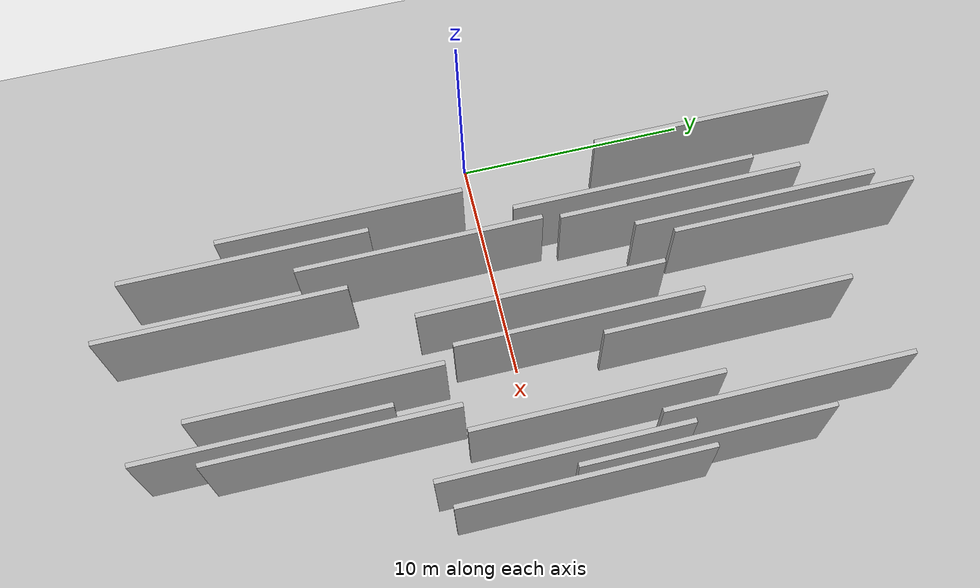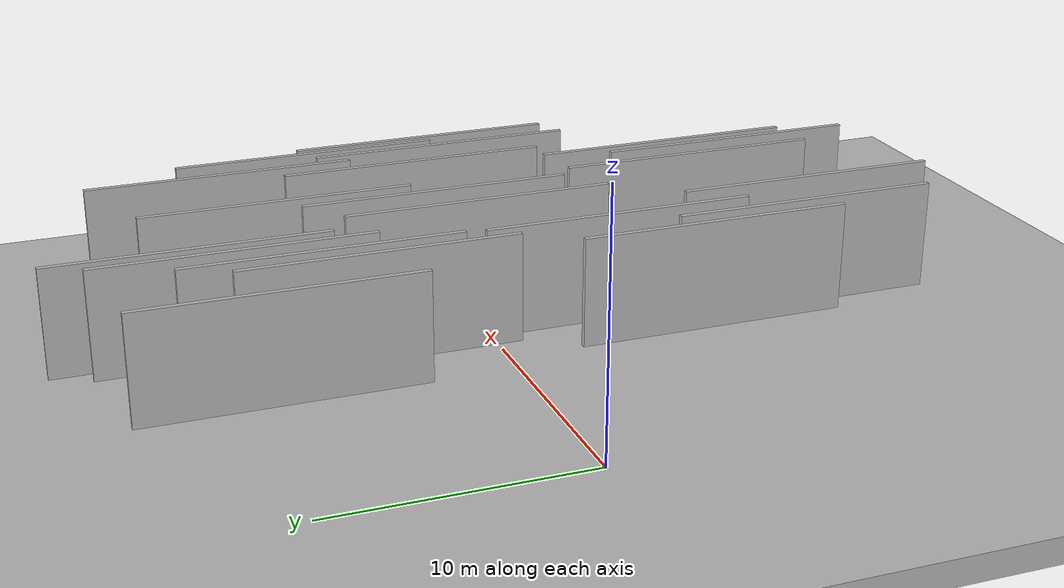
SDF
<?xml version="1.0" encoding="utf-8"?>

<sdf version="1.6">

   <world name="default">

      <gui fullscreen="0">

         <camera name="user_camera">

            <pose>-15 0 4.57585 0 0 0</pose>

            <view_controller>orbit</view_controller>

         </camera>

      </gui>

      <scene>

         <sky>

           <clouds>

             <speed>12</speed>

           </clouds>

         </sky>

         <ambient>0.4 0.4 0.4 1</ambient>

         <background>0.7 0.7 0.7 1</background>

         <shadows>1</shadows>

      </scene>

      <gravity>0 0 -9.8066</gravity>

      <magnetic_field>6e-06 2.3e-05 -4.2e-05</magnetic_field>

      <physics default="0" name="default_physics" type="ode">

         <ode>

            <solver>

               <type>quick</type>

               <iters>10</iters>

               <sor>1.0</sor>

               <use_dynamic_moi_rescaling>0</use_dynamic_moi_rescaling>

            </solver>

            <constraints>

               <cfm>0</cfm>

               <erp>0.2</erp>

               <contact_max_correcting_vel>100</contact_max_correcting_vel>

               <contact_surface_layer>0.001</contact_surface_layer>

            </constraints>

         </ode>

         <max_step_size>0.004</max_step_size>

         <real_time_factor>1</real_time_factor>

         <real_time_update_rate>250</real_time_update_rate>

      </physics>

      <light name="sun" type="directional">

         <cast_shadows>1</cast_shadows>

         <pose>0 0 10 0 0 0</pose>

         <diffuse>0.8 0.8 0.8 1</diffuse>

         <specular>0.2 0.2 0.2 1</specular>

         <attenuation>

            <range>1000</range>

            <constant>0.9</constant>

            <linear>0.01</linear>

            <quadratic>0.001</quadratic>

         </attenuation>

         <direction>-0.5 0.1 -0.9</direction>

      </light>

      <include>

         <name>ground_plane_1</name>

         <uri>model://HANNAS_ground_plane</uri>

         <pose>0 0 0  0 0 0</pose>

      </include>

      <include>

         <name>ground_plane_2</name>

         <uri>model://HANNAS_ground_plane</uri>

         <pose>100 0 0  0 0 0</pose>

      </include>

      <model name="HANNAS_wall_1">

         <static>1</static>

         <pose frame="">3.3472 9.8703 2.5 0.000000 0.000000 1.570796</pose>

         <link name="link">

            <pose frame="">0 0 2.00 0 0 0</pose>

            <collision name="collision">

               <geometry>

                  <box>

                     <size>10.00 0.2 4.00</size>

                  </box>

               </geometry>

               <max_contacts>10</max_contacts>

               <surface>

                  <contact>

                     <ode/>

                  </contact>

                  <bounce/>

                  <friction>

                     <torsional>

                        <ode/>

                     </torsional>

                     <ode/>

                  </friction>

               </surface>

            </collision>

            <visual name="visual">

               <cast_shadows>0</cast_shadows>

               <geometry>

                  <box>

                     <size>10.00 0.2 4.00</size>

                  </box>

               </geometry>

               <material>

                  <script>

                     <uri>model://HANNAS_wall/materials/scripts</uri>

                     <uri>model://HANNAS_wall/materials/textures</uri>

                     <name>vrc/HANNAS_wall</name>

                  </script>

               </material>

            </visual>

            <self_collide>0</self_collide>

            <enable_wind>0</enable_wind>

            <kinematic>0</kinematic>

         </link>

      </model>

      <model name="HANNAS_wall_2">

         <static>1</static>

         <pose frame="">5.0720 -9.8414 2.5 0.000000 0.000000 1.570796</pose>

         <link name="link">

            <pose frame="">0 0 2.00 0 0 0</pose>

            <collision name="collision">

               <geometry>

                  <box>

                     <size>10.00 0.2 4.00</size>

                  </box>

               </geometry>

               <max_contacts>10</max_contacts>

               <surface>

                  <contact>

                     <ode/>

                  </contact>

                  <bounce/>

                  <friction>

                     <torsional>

                        <ode/>

                     </torsional>

                     <ode/>

                  </friction>

               </surface>

            </collision>

            <visual name="visual">

               <cast_shadows>0</cast_shadows>

               <geometry>

                  <box>

                     <size>10.00 0.2 4.00</size>

                  </box>

               </geometry>

               <material>

                  <script>

                     <uri>model://HANNAS_wall/materials/scripts</uri>

                     <uri>model://HANNAS_wall/materials/textures</uri>

                     <name>vrc/HANNAS_wall</name>

                  </script>

               </material>

            </visual>

            <self_collide>0</self_collide>

            <enable_wind>0</enable_wind>

            <kinematic>0</kinematic>

         </link>

      </model>

      <model name="HANNAS_wall_3">

         <static>1</static>

         <pose frame="">13.0197 -7.7997 2.5 0.000000 0.000000 1.570796</pose>

         <link name="link">

            <pose frame="">0 0 2.00 0 0 0</pose>

            <collision name="collision">

               <geometry>

                  <box>

                     <size>10.00 0.2 4.00</size>

                  </box>

               </geometry>

               <max_contacts>10</max_contacts>

               <surface>

                  <contact>

                     <ode/>

                  </contact>

                  <bounce/>

                  <friction>

                     <torsional>

                        <ode/>

                     </torsional>

                     <ode/>

                  </friction>

               </surface>

            </collision>

            <visual name="visual">

               <cast_shadows>0</cast_shadows>

               <geometry>

                  <box>

                     <size>10.00 0.2 4.00</size>

                  </box>

               </geometry>

               <material>

                  <script>

                     <uri>model://HANNAS_wall/materials/scripts</uri>

                     <uri>model://HANNAS_wall/materials/textures</uri>

                     <name>vrc/HANNAS_wall</name>

                  </script>

               </material>

            </visual>

            <self_collide>0</self_collide>

            <enable_wind>0</enable_wind>

            <kinematic>0</kinematic>

         </link>

      </model>

      <model name="HANNAS_wall_4">

         <static>1</static>

         <pose frame="">16.2822 5.7857 2.5 0.000000 0.000000 1.570796</pose>

         <link name="link">

            <pose frame="">0 0 2.00 0 0 0</pose>

            <collision name="collision">

               <geometry>

                  <box>

                     <size>10.00 0.2 4.00</size>

                  </box>

               </geometry>

               <max_contacts>10</max_contacts>

               <surface>

                  <contact>

                     <ode/>

                  </contact>

                  <bounce/>

                  <friction>

                     <torsional>

                        <ode/>

                     </torsional>

                     <ode/>

                  </friction>

               </surface>

            </collision>

            <visual name="visual">

               <cast_shadows>0</cast_shadows>

               <geometry>

                  <box>

                     <size>10.00 0.2 4.00</size>

                  </box>

               </geometry>

               <material>

                  <script>

                     <uri>model://HANNAS_wall/materials/scripts</uri>

                     <uri>model://HANNAS_wall/materials/textures</uri>

                     <name>vrc/HANNAS_wall</name>

                  </script>

               </material>

            </visual>

            <self_collide>0</self_collide>

            <enable_wind>0</enable_wind>

            <kinematic>0</kinematic>

         </link>

      </model>

      <model name="HANNAS_wall_5">

         <static>1</static>

         <pose frame="">12.4127 -10.3117 2.5 0.000000 0.000000 1.570796</pose>

         <link name="link">

            <pose frame="">0 0 2.00 0 0 0</pose>

            <collision name="collision">

               <geometry>

                  <box>

                     <size>10.00 0.2 4.00</size>

                  </box>

               </geometry>

               <max_contacts>10</max_contacts>

               <surface>

                  <contact>

                     <ode/>

                  </contact>

                  <bounce/>

                  <friction>

                     <torsional>

                        <ode/>

                     </torsional>

                     <ode/>

                  </friction>

               </surface>

            </collision>

            <visual name="visual">

               <cast_shadows>0</cast_shadows>

               <geometry>

                  <box>

                     <size>10.00 0.2 4.00</size>

                  </box>

               </geometry>

               <material>

                  <script>

                     <uri>model://HANNAS_wall/materials/scripts</uri>

                     <uri>model://HANNAS_wall/materials/textures</uri>

                     <name>vrc/HANNAS_wall</name>

                  </script>

               </material>

            </visual>

            <self_collide>0</self_collide>

            <enable_wind>0</enable_wind>

            <kinematic>0</kinematic>

         </link>

      </model>

      <model name="HANNAS_wall_6">

         <static>1</static>

         <pose frame="">7.2855 10.4840 2.5 0.000000 0.000000 1.570796</pose>

         <link name="link">

            <pose frame="">0 0 2.00 0 0 0</pose>

            <collision name="collision">

               <geometry>

                  <box>

                     <size>10.00 0.2 4.00</size>

                  </box>

               </geometry>

               <max_contacts>10</max_contacts>

               <surface>

                  <contact>

                     <ode/>

                  </contact>

                  <bounce/>

                  <friction>

                     <torsional>

                        <ode/>

                     </torsional>

                     <ode/>

                  </friction>

               </surface>

            </collision>

            <visual name="visual">

               <cast_shadows>0</cast_shadows>

               <geometry>

                  <box>

                     <size>10.00 0.2 4.00</size>

                  </box>

               </geometry>

               <material>

                  <script>

                     <uri>model://HANNAS_wall/materials/scripts</uri>

                     <uri>model://HANNAS_wall/materials/textures</uri>

                     <name>vrc/HANNAS_wall</name>

                  </script>

               </material>

            </visual>

            <self_collide>0</self_collide>

            <enable_wind>0</enable_wind>

            <kinematic>0</kinematic>

         </link>

      </model>

      <model name="HANNAS_wall_7">

         <static>1</static>

         <pose frame="">14.9971 9.3803 2.5 0.000000 0.000000 1.570796</pose>

         <link name="link">

            <pose frame="">0 0 2.00 0 0 0</pose>

            <collision name="collision">

               <geometry>

                  <box>

                     <size>10.00 0.2 4.00</size>

                  </box>

               </geometry>

               <max_contacts>10</max_contacts>

               <surface>

                  <contact>

                     <ode/>

                  </contact>

                  <bounce/>

                  <friction>

                     <torsional>

                        <ode/>

                     </torsional>

                     <ode/>

                  </friction>

               </surface>

            </collision>

            <visual name="visual">

               <cast_shadows>0</cast_shadows>

               <geometry>

                  <box>

                     <size>10.00 0.2 4.00</size>

                  </box>

               </geometry>

               <material>

                  <script>

                     <uri>model://HANNAS_wall/materials/scripts</uri>

                     <uri>model://HANNAS_wall/materials/textures</uri>

                     <name>vrc/HANNAS_wall</name>

                  </script>

               </material>

            </visual>

            <self_collide>0</self_collide>

            <enable_wind>0</enable_wind>

            <kinematic>0</kinematic>

         </link>

      </model>

      <model name="HANNAS_wall_8">

         <static>1</static>

         <pose frame="">11.2402 -8.0979 2.5 0.000000 0.000000 1.570796</pose>

         <link name="link">

            <pose frame="">0 0 2.00 0 0 0</pose>

            <collision name="collision">

               <geometry>

                  <box>

                     <size>10.00 0.2 4.00</size>

                  </box>

               </geometry>

               <max_contacts>10</max_contacts>

               <surface>

                  <contact>

                     <ode/>

                  </contact>

                  <bounce/>

                  <friction>

                     <torsional>

                        <ode/>

                     </torsional>

                     <ode/>

                  </friction>

               </surface>

            </collision>

            <visual name="visual">

               <cast_shadows>0</cast_shadows>

               <geometry>

                  <box>

                     <size>10.00 0.2 4.00</size>

                  </box>

               </geometry>

               <material>

                  <script>

                     <uri>model://HANNAS_wall/materials/scripts</uri>

                     <uri>model://HANNAS_wall/materials/textures</uri>

                     <name>vrc/HANNAS_wall</name>

                  </script>

               </material>

            </visual>

            <self_collide>0</self_collide>

            <enable_wind>0</enable_wind>

            <kinematic>0</kinematic>

         </link>

      </model>

      <model name="HANNAS_wall_9">

         <static>1</static>

         <pose frame="">5.4646 5.9415 2.5 0.000000 0.000000 1.570796</pose>

         <link name="link">

            <pose frame="">0 0 2.00 0 0 0</pose>

            <collision name="collision">

               <geometry>

                  <box>

                     <size>10.00 0.2 4.00</size>

                  </box>

               </geometry>

               <max_contacts>10</max_contacts>

               <surface>

                  <contact>

                     <ode/>

                  </contact>

                  <bounce/>

                  <friction>

                     <torsional>

                        <ode/>

                     </torsional>

                     <ode/>

                  </friction>

               </surface>

            </collision>

            <visual name="visual">

               <cast_shadows>0</cast_shadows>

               <geometry>

                  <box>

                     <size>10.00 0.2 4.00</size>

                  </box>

               </geometry>

               <material>

                  <script>

                     <uri>model://HANNAS_wall/materials/scripts</uri>

                     <uri>model://HANNAS_wall/materials/textures</uri>

                     <name>vrc/HANNAS_wall</name>

                  </script>

               </material>

            </visual>

            <self_collide>0</self_collide>

            <enable_wind>0</enable_wind>

            <kinematic>0</kinematic>

         </link>

      </model>

      <model name="HANNAS_wall_10">

         <static>1</static>

         <pose frame="">10.6136 2.3437 2.5 0.000000 0.000000 1.570796</pose>

         <link name="link">

            <pose frame="">0 0 2.00 0 0 0</pose>

            <collision name="collision">

               <geometry>

                  <box>

                     <size>10.00 0.2 4.00</size>

                  </box>

               </geometry>

               <max_contacts>10</max_contacts>

               <surface>

                  <contact>

                     <ode/>

                  </contact>

                  <bounce/>

                  <friction>

                     <torsional>

                        <ode/>

                     </torsional>

                     <ode/>

                  </friction>

               </surface>

            </collision>

            <visual name="visual">

               <cast_shadows>0</cast_shadows>

               <geometry>

                  <box>

                     <size>10.00 0.2 4.00</size>

                  </box>

               </geometry>

               <material>

                  <script>

                     <uri>model://HANNAS_wall/materials/scripts</uri>

                     <uri>model://HANNAS_wall/materials/textures</uri>

                     <name>vrc/HANNAS_wall</name>

                  </script>

               </material>

            </visual>

            <self_collide>0</self_collide>

            <enable_wind>0</enable_wind>

            <kinematic>0</kinematic>

         </link>

      </model>

      <model name="HANNAS_wall_11">

         <static>1</static>

         <pose frame="">6.2844 7.6744 2.5 0.000000 0.000000 1.570796</pose>

         <link name="link">

            <pose frame="">0 0 2.00 0 0 0</pose>

            <collision name="collision">

               <geometry>

                  <box>

                     <size>10.00 0.2 4.00</size>

                  </box>

               </geometry>

               <max_contacts>10</max_contacts>

               <surface>

                  <contact>

                     <ode/>

                  </contact>

                  <bounce/>

                  <friction>

                     <torsional>

                        <ode/>

                     </torsional>

                     <ode/>

                  </friction>

               </surface>

            </collision>

            <visual name="visual">

               <cast_shadows>0</cast_shadows>

               <geometry>

                  <box>

                     <size>10.00 0.2 4.00</size>

                  </box>

               </geometry>

               <material>

                  <script>

                     <uri>model://HANNAS_wall/materials/scripts</uri>

                     <uri>model://HANNAS_wall/materials/textures</uri>

                     <name>vrc/HANNAS_wall</name>

                  </script>

               </material>

            </visual>

            <self_collide>0</self_collide>

            <enable_wind>0</enable_wind>

            <kinematic>0</kinematic>

         </link>

      </model>

      <model name="HANNAS_wall_12">

         <static>1</static>

         <pose frame="">14.0389 2.1374 2.5 0.000000 0.000000 1.570796</pose>

         <link name="link">

            <pose frame="">0 0 2.00 0 0 0</pose>

            <collision name="collision">

               <geometry>

                  <box>

                     <size>10.00 0.2 4.00</size>

                  </box>

               </geometry>

               <max_contacts>10</max_contacts>

               <surface>

                  <contact>

                     <ode/>

                  </contact>

                  <bounce/>

                  <friction>

                     <torsional>

                        <ode/>

                     </torsional>

                     <ode/>

                  </friction>

               </surface>

            </collision>

            <visual name="visual">

               <cast_shadows>0</cast_shadows>

               <geometry>

                  <box>

                     <size>10.00 0.2 4.00</size>

                  </box>

               </geometry>

               <material>

                  <script>

                     <uri>model://HANNAS_wall/materials/scripts</uri>

                     <uri>model://HANNAS_wall/materials/textures</uri>

                     <name>vrc/HANNAS_wall</name>

                  </script>

               </material>

            </visual>

            <self_collide>0</self_collide>

            <enable_wind>0</enable_wind>

            <kinematic>0</kinematic>

         </link>

      </model>

      <model name="HANNAS_wall_13">

         <static>1</static>

         <pose frame="">9.1076 1.1937 2.5 0.000000 0.000000 1.570796</pose>

         <link name="link">

            <pose frame="">0 0 2.00 0 0 0</pose>

            <collision name="collision">

               <geometry>

                  <box>

                     <size>10.00 0.2 4.00</size>

                  </box>

               </geometry>

               <max_contacts>10</max_contacts>

               <surface>

                  <contact>

                     <ode/>

                  </contact>

                  <bounce/>

                  <friction>

                     <torsional>

                        <ode/>

                     </torsional>

                     <ode/>

                  </friction>

               </surface>

            </collision>

            <visual name="visual">

               <cast_shadows>0</cast_shadows>

               <geometry>

                  <box>

                     <size>10.00 0.2 4.00</size>

                  </box>

               </geometry>

               <material>

                  <script>

                     <uri>model://HANNAS_wall/materials/scripts</uri>

                     <uri>model://HANNAS_wall/materials/textures</uri>

                     <name>vrc/HANNAS_wall</name>

                  </script>

               </material>

            </visual>

            <self_collide>0</self_collide>

            <enable_wind>0</enable_wind>

            <kinematic>0</kinematic>

         </link>

      </model>

      <model name="HANNAS_wall_14">

         <static>1</static>

         <pose frame="">7.9416 11.8990 2.5 0.000000 0.000000 1.570796</pose>

         <link name="link">

            <pose frame="">0 0 2.00 0 0 0</pose>

            <collision name="collision">

               <geometry>

                  <box>

                     <size>10.00 0.2 4.00</size>

                  </box>

               </geometry>

               <max_contacts>10</max_contacts>

               <surface>

                  <contact>

                     <ode/>

                  </contact>

                  <bounce/>

                  <friction>

                     <torsional>

                        <ode/>

                     </torsional>

                     <ode/>

                  </friction>

               </surface>

            </collision>

            <visual name="visual">

               <cast_shadows>0</cast_shadows>

               <geometry>

                  <box>

                     <size>10.00 0.2 4.00</size>

                  </box>

               </geometry>

               <material>

                  <script>

                     <uri>model://HANNAS_wall/materials/scripts</uri>

                     <uri>model://HANNAS_wall/materials/textures</uri>

                     <name>vrc/HANNAS_wall</name>

                  </script>

               </material>

            </visual>

            <self_collide>0</self_collide>

            <enable_wind>0</enable_wind>

            <kinematic>0</kinematic>

         </link>

      </model>

      <model name="HANNAS_wall_15">

         <static>1</static>

         <pose frame="">6.1265 -3.0123 2.5 0.000000 0.000000 1.570796</pose>

         <link name="link">

            <pose frame="">0 0 2.00 0 0 0</pose>

            <collision name="collision">

               <geometry>

                  <box>

                     <size>10.00 0.2 4.00</size>

                  </box>

               </geometry>

               <max_contacts>10</max_contacts>

               <surface>

                  <contact>

                     <ode/>

                  </contact>

                  <bounce/>

                  <friction>

                     <torsional>

                        <ode/>

                     </torsional>

                     <ode/>

                  </friction>

               </surface>

            </collision>

            <visual name="visual">

               <cast_shadows>0</cast_shadows>

               <geometry>

                  <box>

                     <size>10.00 0.2 4.00</size>

                  </box>

               </geometry>

               <material>

                  <script>

                     <uri>model://HANNAS_wall/materials/scripts</uri>

                     <uri>model://HANNAS_wall/materials/textures</uri>

                     <name>vrc/HANNAS_wall</name>

                  </script>

               </material>

            </visual>

            <self_collide>0</self_collide>

            <enable_wind>0</enable_wind>

            <kinematic>0</kinematic>

         </link>

      </model>

      <model name="HANNAS_wall_16">

         <static>1</static>

         <pose frame="">7.3140 -11.0923 2.5 0.000000 0.000000 1.570796</pose>

         <link name="link">

            <pose frame="">0 0 2.00 0 0 0</pose>

            <collision name="collision">

               <geometry>

                  <box>

                     <size>10.00 0.2 4.00</size>

                  </box>

               </geometry>

               <max_contacts>10</max_contacts>

               <surface>

                  <contact>

                     <ode/>

                  </contact>

                  <bounce/>

                  <friction>

                     <torsional>

                        <ode/>

                     </torsional>

                     <ode/>

                  </friction>

               </surface>

            </collision>

            <visual name="visual">

               <cast_shadows>0</cast_shadows>

               <geometry>

                  <box>

                     <size>10.00 0.2 4.00</size>

                  </box>

               </geometry>

               <material>

                  <script>

                     <uri>model://HANNAS_wall/materials/scripts</uri>

                     <uri>model://HANNAS_wall/materials/textures</uri>

                     <name>vrc/HANNAS_wall</name>

                  </script>

               </material>

            </visual>

            <self_collide>0</self_collide>

            <enable_wind>0</enable_wind>

            <kinematic>0</kinematic>

         </link>

      </model>

      <model name="HANNAS_wall_17">

         <static>1</static>

         <pose frame="">11.4724 8.0607 2.5 0.000000 0.000000 1.570796</pose>

         <link name="link">

            <pose frame="">0 0 2.00 0 0 0</pose>

            <collision name="collision">

               <geometry>

                  <box>

                     <size>10.00 0.2 4.00</size>

                  </box>

               </geometry>

               <max_contacts>10</max_contacts>

               <surface>

                  <contact>

                     <ode/>

                  </contact>

                  <bounce/>

                  <friction>

                     <torsional>

                        <ode/>

                     </torsional>

                     <ode/>

                  </friction>

               </surface>

            </collision>

            <visual name="visual">

               <cast_shadows>0</cast_shadows>

               <geometry>

                  <box>

                     <size>10.00 0.2 4.00</size>

                  </box>

               </geometry>

               <material>

                  <script>

                     <uri>model://HANNAS_wall/materials/scripts</uri>

                     <uri>model://HANNAS_wall/materials/textures</uri>

                     <name>vrc/HANNAS_wall</name>

                  </script>

               </material>

            </visual>

            <self_collide>0</self_collide>

            <enable_wind>0</enable_wind>

            <kinematic>0</kinematic>

         </link>

      </model>

      <model name="HANNAS_wall_18">

         <static>1</static>

         <pose frame="">16.7370 1.0006 2.5 0.000000 0.000000 1.570796</pose>

         <link name="link">

            <pose frame="">0 0 2.00 0 0 0</pose>

            <collision name="collision">

               <geometry>

                  <box>

                     <size>10.00 0.2 4.00</size>

                  </box>

               </geometry>

               <max_contacts>10</max_contacts>

               <surface>

                  <contact>

                     <ode/>

                  </contact>

                  <bounce/>

                  <friction>

                     <torsional>

                        <ode/>

                     </torsional>

                     <ode/>

                  </friction>

               </surface>

            </collision>

            <visual name="visual">

               <cast_shadows>0</cast_shadows>

               <geometry>

                  <box>

                     <size>10.00 0.2 4.00</size>

                  </box>

               </geometry>

               <material>

                  <script>

                     <uri>model://HANNAS_wall/materials/scripts</uri>

                     <uri>model://HANNAS_wall/materials/textures</uri>

                     <name>vrc/HANNAS_wall</name>

                  </script>

               </material>

            </visual>

            <self_collide>0</self_collide>

            <enable_wind>0</enable_wind>

            <kinematic>0</kinematic>

         </link>

      </model>

      <model name="HANNAS_wall_19">

         <static>1</static>

         <pose frame="">4.2111 -5.8537 2.5 0.000000 0.000000 1.570796</pose>

         <link name="link">

            <pose frame="">0 0 2.00 0 0 0</pose>

            <collision name="collision">

               <geometry>

                  <box>

                     <size>10.00 0.2 4.00</size>

                  </box>

               </geometry>

               <max_contacts>10</max_contacts>

               <surface>

                  <contact>

                     <ode/>

                  </contact>

                  <bounce/>

                  <friction>

                     <torsional>

                        <ode/>

                     </torsional>

                     <ode/>

                  </friction>

               </surface>

            </collision>

            <visual name="visual">

               <cast_shadows>0</cast_shadows>

               <geometry>

                  <box>

                     <size>10.00 0.2 4.00</size>

                  </box>

               </geometry>

               <material>

                  <script>

                     <uri>model://HANNAS_wall/materials/scripts</uri>

                     <uri>model://HANNAS_wall/materials/textures</uri>

                     <name>vrc/HANNAS_wall</name>

                  </script>

               </material>

            </visual>

            <self_collide>0</self_collide>

            <enable_wind>0</enable_wind>

            <kinematic>0</kinematic>

         </link>

      </model>

      <model name="HANNAS_wall_20">

         <static>1</static>

         <pose frame="">15.6525 0.4967 2.5 0.000000 0.000000 1.570796</pose>

         <link name="link">

            <pose frame="">0 0 2.00 0 0 0</pose>

            <collision name="collision">

               <geometry>

                  <box>

                     <size>10.00 0.2 4.00</size>

                  </box>

               </geometry>

               <max_contacts>10</max_contacts>

               <surface>

                  <contact>

                     <ode/>

                  </contact>

                  <bounce/>

                  <friction>

                     <torsional>

                        <ode/>

                     </torsional>

                     <ode/>

                  </friction>

               </surface>

            </collision>

            <visual name="visual">

               <cast_shadows>0</cast_shadows>

               <geometry>

                  <box>

                     <size>10.00 0.2 4.00</size>

                  </box>

               </geometry>

               <material>

                  <script>

                     <uri>model://HANNAS_wall/materials/scripts</uri>

                     <uri>model://HANNAS_wall/materials/textures</uri>

                     <name>vrc/HANNAS_wall</name>

                  </script>

               </material>

            </visual>

            <self_collide>0</self_collide>

            <enable_wind>0</enable_wind>

            <kinematic>0</kinematic>

         </link>

      </model>

   </world>

</sdf>

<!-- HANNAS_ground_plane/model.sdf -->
<sdf version="1.4">
<model name="HANNAS_ground_plane">
  <static>true</static>
    <link name="link">
      <collision name="collision">
        <geometry>
          <plane>
            <normal>0 0 1</normal>
            <size>1000 1000</size>
          </plane>
        </geometry>
        <surface>
          <friction>
            <ode>
              <mu>100</mu>
              <mu2>50</mu2>
            </ode>
          </friction>
        </surface>
      </collision>
      <visual name="visual">
        <cast_shadows>false</cast_shadows>
        <geometry>
          <plane>
            <normal>0 0 1</normal>
            <size>1000 1000</size>
          </plane>
        </geometry>
        <material>
          <script>
            <uri>model://HANNAS_ground_plane/materials/scripts/HANNAS_ground_plane.material</uri>
	    <uri>model://HANNAS_ground_plane/materials/textures</uri>
            <name>HANNASGroundPlane/Image</name>
          </script>
        </material>
      </visual>
    </link>
  </model>
</sdf>
